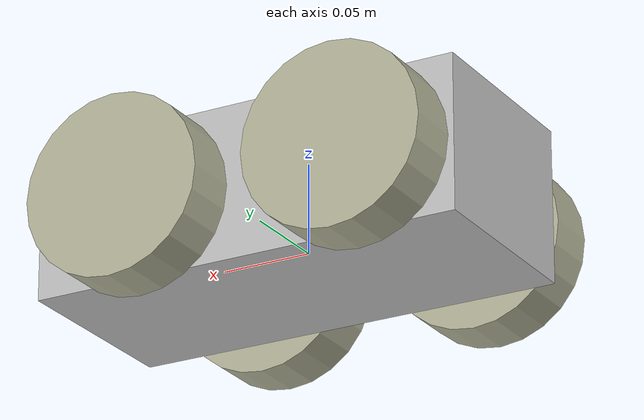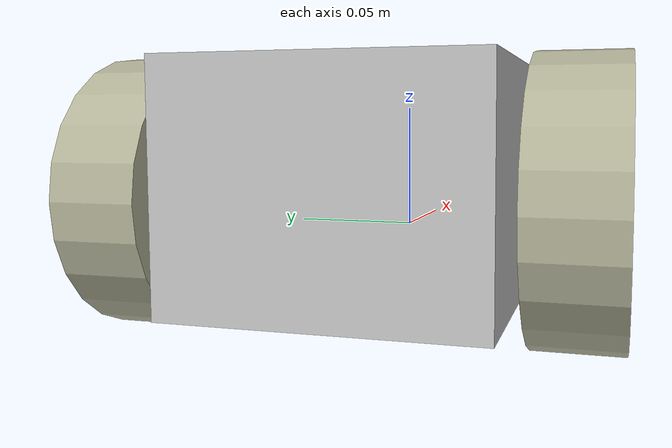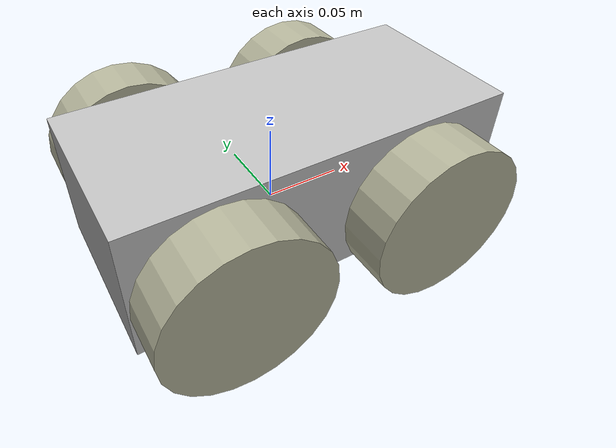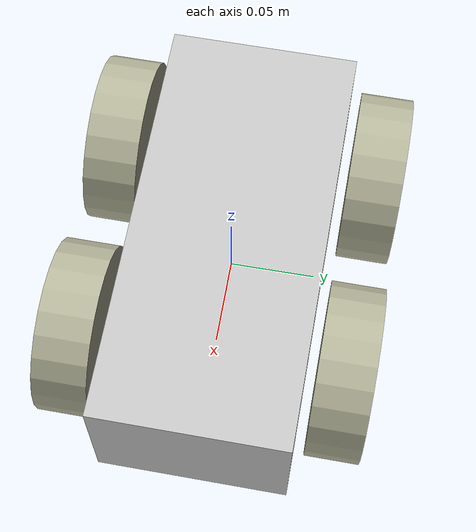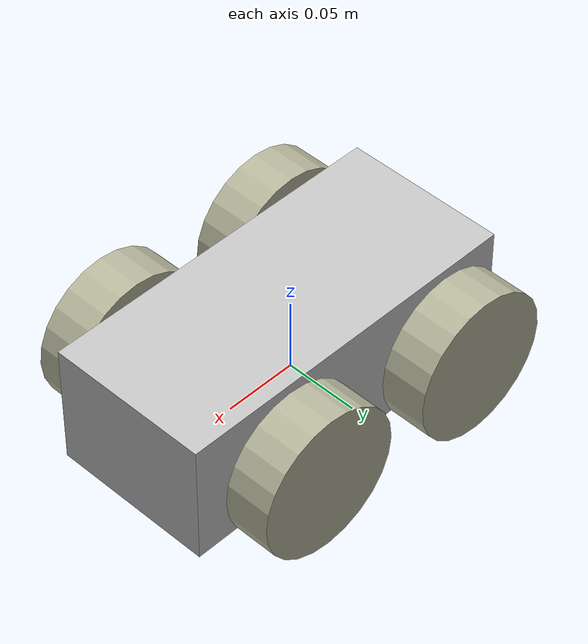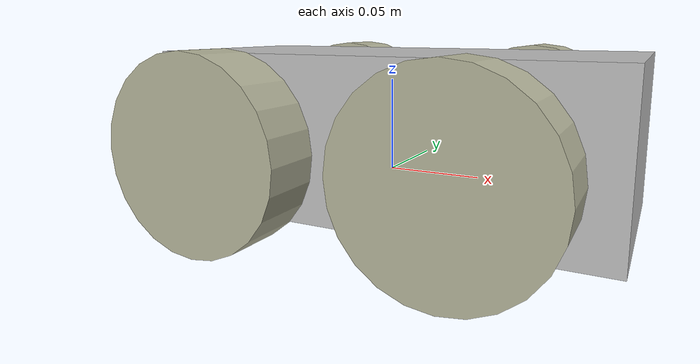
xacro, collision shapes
<?xml version="1.0"?>
<robot name="mechROS"
	xmlns:xacro="http://www.ros.org/wiki/xacro">

	<!-- PROPERTIES & MACROS -->

	<!-- Robot name -->
	<xacro:arg name="prefix" default="mechROS_" />
	<xacro:arg name="wheel_offset_y" default="0.0735" />

	<!-- SCALE definition -->
	<xacro:property name="scale" value="0.01" />
	<!-- meritko-->
	<xacro:property name="Scale" value="${scale} ${scale} ${scale}" />

	<!-- Wheel parameters -->
	<xacro:property name="wheel_offset_x" value="0.063" />
	<!-- x,y,z in translation from base_link to the center of the wheel -->
	<xacro:property name="wheel_offset_y" value="0.0735" />
	<xacro:property name="wheel_offset_z" value="0.018" />

	<!-- MATERIALS -->

	<material name="camera_color">
		<color rgba=".01 1 .5 1" />
	</material>

	<!-- Import files -->

	<xacro:include filename="$(find mech_ros)/robot_description/urdf/rubber_wheel.urdf.xacro" />
	<xacro:include filename="$(find mech_ros)/robot_description/urdf/mechROS_control.gazebo.xacro" />
	<xacro:include filename="$(find mech_ros)/robot_description/sensors/urdf/all_sensors.urdf.xacro" />

	<xacro:property name="PI" value="3.1415926535897931" />

	<material name="gray_color">
		<color rgba=".75 .75 .75 1" />
	</material>

	<!-- LINKS -->

	<link name="$(arg prefix)base_link">
		<visual>
			<origin xyz="0.011 -0.060276 0" rpy="${PI/2} 0 ${PI/2}" />
			<geometry>
				<mesh filename="package://mech_ros/robot_description/meshes/Chassis_10000.stl" scale="${Scale}" />
			</geometry>
			<material name="gray_color" />
		</visual>

		<collision>
			<origin xyz="0.008 0 0.023" rpy="0 0 0" />
			<geometry>
				<box size="0.242 0.11 0.085" />
			</geometry>
		</collision>
	</link>

	<link name="Inertia">
		<inertial>
			<origin xyz="0 0 0.02" />
			<mass value="1.172" />
			<inertia ixx="0.001568" ixy="0.0" ixz="0.0" iyy="0.003775" iyz="0.0" izz="0.00483" />
		</inertial>
	</link>

	<joint name="$(arg prefix)base_link" type="fixed">
		<parent link="$(arg prefix)base_link" />
		<child link="Inertia" />
		<origin xyz="0.0 0.0 0.0" />
	</joint>

	<gazebo reference="$(arg prefix)base_link">
		<material>Gazebo/GreyGradientSky</material>
		<turnGravityOff>false</turnGravityOff>
	</gazebo>

	<!-- Robots Elements -->

	<!-- Add elements  -->
	<xacro:rubber_wheel prefix="front_right" parent="$(arg prefix)base_link" reflect="false">
		<origin xyz="${wheel_offset_x} -${wheel_offset_y} ${wheel_offset_z}" rpy="0 0 0" />
	</xacro:rubber_wheel>

	<xacro:rubber_wheel prefix="front_left" parent="$(arg prefix)base_link" reflect="true">
		<origin xyz="${wheel_offset_x} ${wheel_offset_y} ${wheel_offset_z}" rpy="0 0 0" />
	</xacro:rubber_wheel>

	<xacro:rubber_wheel prefix="back_left" parent="$(arg prefix)base_link" reflect="true">
		<origin xyz="-${wheel_offset_x} ${wheel_offset_y} ${wheel_offset_z}" rpy="0 0 0" />
	</xacro:rubber_wheel>

	<xacro:rubber_wheel prefix="back_right" parent="$(arg prefix)base_link" reflect="false">
		<origin xyz="-${wheel_offset_x} -${wheel_offset_y} ${wheel_offset_z}" rpy="0 0 0" />
	</xacro:rubber_wheel>

	<!-- Import IMU -->
	<xacro:sensor_imu_hector prefix="imu" parent="$(arg prefix)base_link">
		<origin xyz="0 0.0 0.055" rpy="0 0 0" />
	</xacro:sensor_imu_hector>

	<!-- Import PiCamera -->
	<xacro:pi_camera_sensor prefix="front" parent="$(arg prefix)base_link">
		<origin xyz="0.088 0 0.0204" rpy="0 0 0" />
	</xacro:pi_camera_sensor>

	<!-- Import Laser -->
	<xacro:sensor_hokuyo_urg04lx prefix="laser" parent="$(arg prefix)base_link">
		<origin xyz="0.0 0.0 0.0804" rpy="0 0 0" />
	</xacro:sensor_hokuyo_urg04lx>

	<xacro:ros_control />
</robot>

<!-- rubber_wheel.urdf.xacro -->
<robot name="wheel"
  xmlns:xacro="http://www.ros.org/wiki/xacro">

  <xacro:property name="M_PI" value="3.1415926535897931" />

  <!-- Wheels -->
  <xacro:property name="wheel_radius" value="0.05" />
  <xacro:property name="wheel_height" value="0.031" />
  <!-- really is the wheel width -->
  <xacro:property name="wheel_mass" value="0.079" />
  <!-- in kg-->
  <!-- SCALE definition -->
  <xacro:property name="scale" value="0.01"/>
  <!-- meritko-->
  <xacro:property name="Scale" value="${scale} ${scale} ${scale}"/>

  <material name="tire_texture">
    <texture filename="package://mech_ros/robot_description/textures/rubber.jpg" />
  </material>

  <xacro:macro name="rubber_wheel" params="prefix parent *origin reflect">

    <!--WHEEL TIRE -->

    <joint name="${prefix}_wheel_joint" type="continuous">
      <parent link="${parent}"/>
      <child link="${prefix}_wheel"/>
      <xacro:insert_block name="origin" />
      <axis xyz="0 1 0" rpy="0 0 0" />
      <limit effort="1000" velocity="1000" />
      <joint_properties damping="0.0" friction="0.0"/>
    </joint>

    <link name="${prefix}_wheel">

      <visual>
        <xacro:if value="${reflect}">
          <origin xyz="0 0.003 0" rpy="${-M_PI/2} 0 0" />
        </xacro:if>

        <xacro:unless value="${reflect}">
          <origin xyz="0 -0.003 0" rpy="${M_PI/2} 0 0" />
        </xacro:unless>

        <geometry>
          <mesh filename="package://mech_ros/robot_description/meshes/Wheel_hub_simplified.stl" scale="${Scale}"/>
        </geometry>
        <material name="tire_texture"/>
      </visual>

      <collision>
        <xacro:if value="${reflect}">
          <origin xyz="0 0.003 0" rpy="${M_PI/2} 0 0" />
        </xacro:if>

        <xacro:unless value="${reflect}">
          <origin xyz="0 -0.003 0" rpy="${M_PI/2} 0 0" />
        </xacro:unless>

        <geometry>
          <cylinder length="${wheel_height}" radius="${wheel_radius}" />
        </geometry>
      </collision>

      <surface>
        <friction>
          <ode>
            <mu>1.0</mu>
            <mu2>1.0</mu2>
            <slip1>0.5</slip1>
            <slip2>0.0</slip2>
            <fdir1 value="1 0 0"/>
          </ode>
        </friction>
      </surface>

      <inertial>
        <mass value="${wheel_mass}" />
        <xacro:if value="${reflect}">
          <origin xyz="0 0.003 0" rpy="0 0 0" />
        </xacro:if>

        <xacro:unless value="${reflect}">
          <origin xyz="0 -0.003 0" rpy="0 0 0" />
        </xacro:unless>

        <inertia ixx="0.00069" ixy = "0" ixz = "0" iyy="0.0012057" iyz = "0" izz="0.00069" />
      </inertial>
    </link>

    <!-- Transmission -->

    <transmission name="${prefix}_wheel_joint_trans">
      <type>transmission_interface/SimpleTransmission</type>
      <joint name="${prefix}_wheel_joint">
        <hardwareInterface>hardware_interface/VelocityJointInterface</hardwareInterface>
      </joint>
      <actuator name="${prefix}_wheel_joint_motor">
        <hardwareInterface>hardware_interface/VelocityJointInterface</hardwareInterface>
        <mechanicalReduction>1</mechanicalReduction>
      </actuator>
    </transmission>

    <gazebo reference="${prefix}_wheel">
      <material>Gazebo/Residential</material>
      <turnGravityOff>false</turnGravityOff>
    </gazebo>

  </xacro:macro>

</robot>

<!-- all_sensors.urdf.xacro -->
<robot name="all_sensors" xmlns:xacro="http://www.ros.org/wiki/xacro">

	<!-- This file unifies all sensors that can be used on simulation, defined as xacro:macros -->

  <!-- Camera -->
  <xacro:include filename="$(find mech_ros)/robot_description/sensors/urdf/pi_camera.urdf.xacro" />

  <!-- Hokuyo urg04lx -->
  <xacro:include filename="$(find mech_ros)/robot_description/sensors/urdf/hokuyo_urg04lx.urdf.xacro" />

  <!-- Imu hector -->
  <xacro:include filename="$(find mech_ros)/robot_description/sensors/urdf/imu_hector_plugin.urdf.xacro" />

</robot>

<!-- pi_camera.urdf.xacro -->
<robot name="pi_camera"
  xmlns:xacro="http://www.ros.org/wiki/xacro">

  <!--Copyright (c) 2014, Robotnik Automation-->
  <!--All rights reserved.-->

  <!--Redistribution and use in source and binary forms, with or without-->
  <!--modification, are permitted provided that the following conditions are met:-->

  <!--* Redistributions of source code must retain the above copyright notice, this-->
  <!--  list of conditions and the following disclaimer.-->

  <!--* Redistributions in binary form must reproduce the above copyright notice,-->
  <!--  this list of conditions and the following disclaimer in the documentation-->
  <!--  and/or other materials provided with the distribution.-->

  <!--THIS SOFTWARE IS PROVIDED BY THE COPYRIGHT HOLDERS AND CONTRIBUTORS "AS IS"-->
  <!--AND ANY EXPRESS OR IMPLIED WARRANTIES, INCLUDING, BUT NOT LIMITED TO, THE-->
  <!--IMPLIED WARRANTIES OF MERCHANTABILITY AND FITNESS FOR A PARTICULAR PURPOSE ARE-->
  <!--DISCLAIMED. IN NO EVENT SHALL THE COPYRIGHT HOLDER OR CONTRIBUTORS BE LIABLE-->
  <!--FOR ANY DIRECT, INDIRECT, INCIDENTAL, SPECIAL, EXEMPLARY, OR CONSEQUENTIAL-->
  <!--DAMAGES (INCLUDING, BUT NOT LIMITED TO, PROCUREMENT OF SUBSTITUTE GOODS OR-->
  <!--SERVICES; LOSS OF USE, DATA, OR PROFITS; OR BUSINESS INTERRUPTION) HOWEVER-->
  <!--CAUSED AND ON ANY THEORY OF LIABILITY, WHETHER IN CONTRACT, STRICT LIABILITY,-->
  <!--OR TORT (INCLUDING NEGLIGENCE OR OTHERWISE) ARISING IN ANY WAY OUT OF THE USE-->
  <!--OF THIS SOFTWARE, EVEN IF ADVISED OF THE POSSIBILITY OF SUCH DAMAGE.-->

  <xacro:property name="M_PI" value="3.1415926535897931" />

  <xacro:macro name="pi_camera_sensor" params="prefix parent *origin">

    <!-- camera body, with origin at bottom screw mount -->
    <joint name="${prefix}_camera_joint" type="fixed">
      <xacro:insert_block name="origin" />
      <parent link="${parent}"/>
      <child link="${prefix}_camera_link" />
    </joint>

    <link name="${prefix}_camera_link">
      <visual>
        <origin xyz="0 0 0" rpy="0 ${-PI/2} ${PI}"/>
        <geometry>
          <mesh filename="package://mech_ros/robot_description/meshes/Camera_2000_simplified.stl" scale="${Scale}"/>
        </geometry>
        <material name="camera_color"/>
      </visual>
      <collision>
        <origin xyz="0.0 0.0 0.0" rpy="0 0 0"/>
        <geometry>
          <box size="0.001 0.03 0.03"/>
        </geometry>
      </collision>
      <inertial>
        <!-- The following are not reliable values, and should not be used for modeling -->
        <mass value="0.01064" />
        <origin xyz="0 0 0" />
        <inertia ixx="0.00003881243" ixy="0.0" ixz="0.0" iyy="0.00000498940" iyz="0.0" izz="0.00003879257" />
      </inertial>
    </link>

    <!-- camera -->
    <gazebo reference="${prefix}_camera_link">
      <sensor type="camera" name="camera1">
        <update_rate>30.0</update_rate>
        <camera name="head">
          <horizontal_fov>1.3962634</horizontal_fov>
          <image>
            <width>1280</width>
            <height>720</height>
            <format>R8G8B8</format>
          </image>
          <clip>
            <near>0.02</near>
            <far>300</far>
          </clip>
          <noise>
            <type>gaussian</type>
            <!-- Noise is sampled independently per pixel on each frame.
               That pixel's noise value is added to each of its color
               channels, which at that point lie in the range [0,1]. -->
            <mean>0.0</mean>
            <stddev>0.007</stddev>
          </noise>
        </camera>
        <plugin name="camera_controller" filename="libgazebo_ros_camera.so">
          <alwaysOn>true</alwaysOn>
          <updateRate>0.0</updateRate>
          <cameraName>pi_camera</cameraName>
          <imageTopicName>image_raw</imageTopicName>
          <cameraInfoTopicName>camera_info</cameraInfoTopicName>
          <frameName>front_camera_link</frameName>
          <hackBaseline>0.0</hackBaseline>
          <distortionK1>0.0</distortionK1>
          <distortionK2>0.0</distortionK2>
          <distortionK3>0.0</distortionK3>
          <distortionT1>0.0</distortionT1>
          <distortionT2>0.0</distortionT2>

          <!-- Added 16.1.2019, if not working due to change, delete -->
          <focalLength>762.724934</focalLength>
        </plugin>
      </sensor>
      <material>Gazebo/Grass</material>
    </gazebo>

  </xacro:macro>

</robot>

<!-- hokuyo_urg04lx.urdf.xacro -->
<robot name="sensor_hokuyo_urg04lx"
  xmlns:xacro="http://www.ros.org/wiki/xacro">

  <xacro:macro name="sensor_hokuyo_urg04lx" params="prefix parent prefix_topic:='front_laser' *origin min_angle:=-2.0943 max_angle:=2.0943">

    <joint name="${prefix}_base_joint" type="fixed">
      <!-- FRONT MOUNT  -->
      <!--origin xyz="0.29 0 0.1" -->
      <!-- TOP MOUNT -->
      <!-- origin xyz="0.0 0.0 0.325"-->
      <xacro:insert_block name="origin" />
      <parent link="${parent}"/>
      <child link="${prefix}_base_link"/>
    </joint>

    <link name="${prefix}_base_link">
      <visual>
        <origin xyz="0 0 -0.05" rpy="0 0 0"/>
        <geometry>
          <mesh filename="package://mech_ros/robot_description/sensors/meshes/hokuyo_urg_04lx.dae"/>
        </geometry>
      </visual>

      <inertial>
        <mass value="1e-5" />

        <origin xyz="0 0 0" rpy="0 0 0"/>
        <inertia ixx="1e-6" ixy="0" ixz="0" iyy="1e-6" iyz="0" izz="1e-6" />
      </inertial>
    </link>

    <link name="${prefix}_link">
    </link>
    <joint name="${prefix}_joint" type="fixed">
      <parent link="${prefix}_base_link"/>
      <child link="${prefix}_link"/>
      <origin xyz="0.0 0.0 0.0" rpy="0 0 0"/>
    </joint>

    <!-- Hokuyo sensor for simulation -->
    <sensor_hokuyo_urg04lx_gazebo/>

  </xacro:macro>

  <xacro:macro name="sensor_hokuyo_urg04lx_gazebo">
    <gazebo reference="${prefix}_link">
      <sensor type="ray" name="${prefix}_sensor">
        <pose>0 0 0 0 0 0</pose>
        <visualize>false</visualize>
        <update_rate>10</update_rate>
        <ray>
          <scan>
            <horizontal>
              <samples>640</samples>
              <resolution>1</resolution>
              <min_angle>${min_angle}</min_angle>
              <max_angle>${max_angle}</max_angle>
            </horizontal>
          </scan>
          <range>
            <min>0.08</min>
            <max>4.0</max>
            <resolution>0.00628318531</resolution>
          </range>
          <noise>
            <type>gaussian</type>
            <mean>0.0</mean>
            <stddev>0.01</stddev>
          </noise>
        </ray>
        <plugin name="${prefix}_controller" filename="libgazebo_ros_laser.so">
          <topicName>${prefix_topic}/scan</topicName>
          <frameName>${prefix}_link</frameName>
          <ignoreTfPrefix>1</ignoreTfPrefix>
        </plugin>
      </sensor>
    </gazebo>
  </xacro:macro>

</robot>

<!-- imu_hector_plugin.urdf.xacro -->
<robot name="sensor_imu" xmlns:xacro="http://www.ros.org/wiki/xacro">

<!--Copyright (c) 2014, Robotnik Automation-->
<!--All rights reserved.-->

<!--Redistribution and use in source and binary forms, with or without-->
<!--modification, are permitted provided that the following conditions are met:-->

<!--* Redistributions of source code must retain the above copyright notice, this-->
<!--  list of conditions and the following disclaimer.-->

<!--* Redistributions in binary form must reproduce the above copyright notice,-->
<!--  this list of conditions and the following disclaimer in the documentation-->
<!--  and/or other materials provided with the distribution.-->

<!--THIS SOFTWARE IS PROVIDED BY THE COPYRIGHT HOLDERS AND CONTRIBUTORS "AS IS"-->
<!--AND ANY EXPRESS OR IMPLIED WARRANTIES, INCLUDING, BUT NOT LIMITED TO, THE-->
<!--IMPLIED WARRANTIES OF MERCHANTABILITY AND FITNESS FOR A PARTICULAR PURPOSE ARE-->
<!--DISCLAIMED. IN NO EVENT SHALL THE COPYRIGHT HOLDER OR CONTRIBUTORS BE LIABLE-->
<!--FOR ANY DIRECT, INDIRECT, INCIDENTAL, SPECIAL, EXEMPLARY, OR CONSEQUENTIAL-->
<!--DAMAGES (INCLUDING, BUT NOT LIMITED TO, PROCUREMENT OF SUBSTITUTE GOODS OR-->
<!--SERVICES; LOSS OF USE, DATA, OR PROFITS; OR BUSINESS INTERRUPTION) HOWEVER-->
<!--CAUSED AND ON ANY THEORY OF LIABILITY, WHETHER IN CONTRACT, STRICT LIABILITY,-->
<!--OR TORT (INCLUDING NEGLIGENCE OR OTHERWISE) ARISING IN ANY WAY OUT OF THE USE-->
<!--OF THIS SOFTWARE, EVEN IF ADVISED OF THE POSSIBILITY OF SUCH DAMAGE.-->

  <xacro:macro name="sensor_imu_hector" params="prefix parent *origin">

	  <joint name="${prefix}_joint" type="fixed">
	      <axis xyz="1 0 0"/>
	      <xacro:insert_block name="origin"/>
	      <parent link="${parent}"/>
	      <child link="${prefix}_link"/>
	  </joint>

	  <link name="${prefix}_link">
	      <inertial>
	        <mass value="0.001"/>
	        <origin rpy="0 0 0" xyz="0 0 0"/>
	        <inertia ixx="0.0001" ixy="0" ixz="0" iyy="0.000001" iyz="0" izz="0.0001"/>
	      </inertial>
	      <visual>
	        <origin rpy="0 0 0" xyz="0 0 0"/>
	        <geometry>
	          <box size="0.001 0.001 0.001"/>
	        </geometry>
	      </visual>
	      <collision>
	        <origin rpy="0 0 0" xyz="0 0 0"/>
	        <geometry>
	          <box size=".001 .001 .001"/>
	        </geometry>
	      </collision>
	  </link>

	  <gazebo>
	    <plugin name="${prefix}_controller" filename="libhector_gazebo_ros_imu.so">
	       <alwaysOn>true</alwaysOn>
	       <topicName>${prefix}/data_raw</topicName>
		   <serviceName>${prefix}/service_raw</serviceName>
		   <bodyName>${prefix}_link</bodyName>
		   <frameId>${prefix}_link</frameId>
	       <updateRate>50.0</updateRate>

	       <gaussianNoise>0.01</gaussianNoise>
	       <!-- orientation parameters -->
           <yawOffset>0.0</yawOffset>
           <yawDrift>0.005</yawDrift>
           <yawGaussianNoise>0.005</yawGaussianNoise>

           <!-- angular velocities parameters -->
           <rateOffset>0.0 0.0 0.0</rateOffset>
           <rateDrift>0.005 0.005 0.005</rateDrift>
           <rateGaussianNoise>0.005 0.005 0.005</rateGaussianNoise>

           <!-- linear accelerations parameters -->
           <accelOffset>0.0 0.0 0.0</accelOffset>
           <accelDrift>0.005 0.005 0.005</accelDrift>
           <accelGaussianNoise>0.05 0.05 0.05</accelGaussianNoise>
	    </plugin>
	  </gazebo>

	  <joint name="${prefix}_magnetic_joint" type="fixed">
	      <axis xyz="1 0 0"/>
	      <origin rpy="0 -1.5707963267 1.5707963267" xyz="0 0 0"/>
	      <parent link="${prefix}_link"/>
	      <child link="${prefix}_magnetic_link"/>
	  </joint>

	  <link name="${prefix}_magnetic_link">
	      <inertial>
	        <mass value="0.001"/>
	        <origin rpy="0 0 0" xyz="0 0 0"/>
	        <inertia ixx="0.0001" ixy="0" ixz="0" iyy="0.000001" iyz="0" izz="0.0001"/>
	      </inertial>
	      <visual>
	        <origin rpy="0 0 0" xyz="0 0 0"/>
	        <geometry>
	          <box size="0.001 0.001 0.001"/>
	        </geometry>
	      </visual>
	      <collision>
	        <origin rpy="0 0 0" xyz="0 0 0"/>
	        <geometry>
	          <box size=".001 .001 .001"/>
	        </geometry>
	      </collision>
	  </link>

	<gazebo>
	    <plugin name="magnetic_controller" filename="libhector_gazebo_ros_magnetic.so">
	       <alwaysOn>true</alwaysOn>
	       <topicName>imu/mag</topicName>
		   <serviceName>imu/mag/service</serviceName>
		   <bodyName>${prefix}_magnetic_link</bodyName>
		   <frameId>${prefix}_magnetic_link</frameId>
	       <updateRate>50.0</updateRate>

	       <gaussianNoise>0.005 0.005 0.005</gaussianNoise>
	       <!-- orientation parameters -->
		<offset>0.0 0.0 0.0</offset>
		<magnitude>1.0</magnitude>
		<referenceHeading>90.0</referenceHeading>
		<declination>20.0</declination>
		<inclination>60.0</inclination>
		<drift>0.005 0.005 0.005</drift>
		<driftFrequency>0.0001 0.0001 0.0001</driftFrequency>
	    </plugin>
	  </gazebo>

  </xacro:macro>

</robot>
